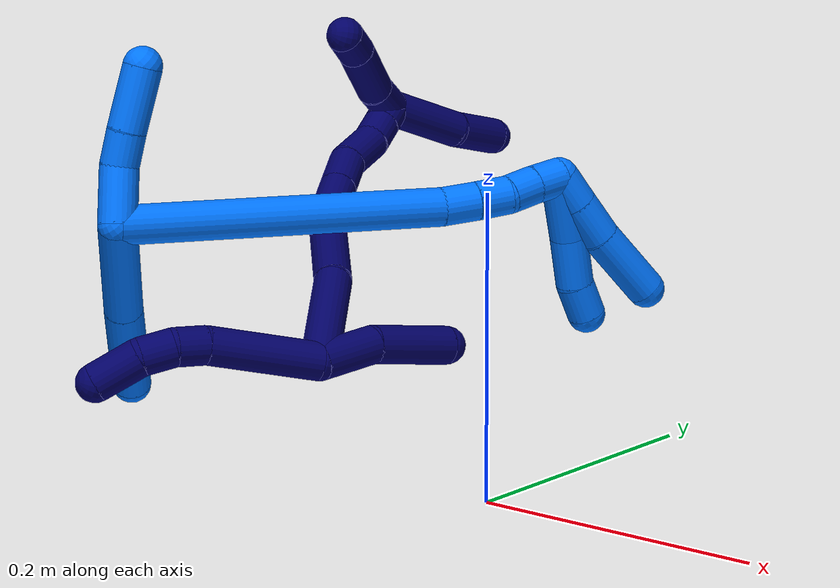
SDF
<sdf version="1.7">
 <world name="default">
  <model name="7">
   <static>0</static>
   <link name="7">
    <collision name="collision-cylinder-e_1_2_8">
     <pose>-0.004748 0.000418 0.037303 -0.011212 -0.126603 0.000711</pose>
     <geometry><cylinder><radius>0.0125</radius><length>0.075212</length></cylinder></geometry>
     <surface>
      <friction><ode><mu>1.16</mu><mu2>1.16</mu2><slip1>0</slip1><slip2>0</slip2></ode></friction>
      <contact><ode><kp>1e+06</kp><kd>1</kd><max_vel>0</max_vel><min_depth>0.001</min_depth></ode></contact>
     </surface>
    </collision>
    <visual name="visual-cylinder-e_1_2_8">
     <pose>-0.004748 0.000418 0.037303 -0.011212 -0.126603 0.000711</pose>
     <geometry><cylinder><radius>0.0125</radius><length>0.075212</length></cylinder></geometry>
     <material><ambient>0.003922 0 0.403922 1</ambient></material>
    </visual>
    <collision name="collision-cylinder-e_2_8_9">
     <pose>-0.010835 -0.001078 0.084646 0.188374 -0.130188 -0.012316</pose>
     <geometry><cylinder><radius>0.0125</radius><length>0.020618</length></cylinder></geometry>
     <surface>
      <friction><ode><mu>1.16</mu><mu2>1.16</mu2><slip1>0</slip1><slip2>0</slip2></ode></friction>
      <contact><ode><kp>1e+06</kp><kd>1</kd><max_vel>0</max_vel><min_depth>0.001</min_depth></ode></contact>
     </surface>
    </collision>
    <visual name="visual-cylinder-e_2_8_9">
     <pose>-0.010835 -0.001078 0.084646 0.188374 -0.130188 -0.012316</pose>
     <geometry><cylinder><radius>0.0125</radius><length>0.020618</length></cylinder></geometry>
     <material><ambient>0.003922 0 0.403922 1</ambient></material>
    </visual>
    <collision name="collision-cylinder-e_3_9_10">
     <pose>-0.015517 -0.007151 0.104372 0.405655 -0.307194 -0.063656</pose>
     <geometry><cylinder><radius>0.0125</radius><length>0.022115</length></cylinder></geometry>
     <surface>
      <friction><ode><mu>1.16</mu><mu2>1.16</mu2><slip1>0</slip1><slip2>0</slip2></ode></friction>
      <contact><ode><kp>1e+06</kp><kd>1</kd><max_vel>0</max_vel><min_depth>0.001</min_depth></ode></contact>
     </surface>
    </collision>
    <visual name="visual-cylinder-e_3_9_10">
     <pose>-0.015517 -0.007151 0.104372 0.405655 -0.307194 -0.063656</pose>
     <geometry><cylinder><radius>0.0125</radius><length>0.022115</length></cylinder></geometry>
     <material><ambient>0.003922 0 0.403922 1</ambient></material>
    </visual>
    <collision name="collision-cylinder-e_4_10_6">
     <pose>-0.0262 -0.020476 0.124966 0.698737 -0.47563 -0.176163</pose>
     <geometry><cylinder><radius>0.0125</radius><length>0.032054</length></cylinder></geometry>
     <surface>
      <friction><ode><mu>1.16</mu><mu2>1.16</mu2><slip1>0</slip1><slip2>0</slip2></ode></friction>
      <contact><ode><kp>1e+06</kp><kd>1</kd><max_vel>0</max_vel><min_depth>0.001</min_depth></ode></contact>
     </surface>
    </collision>
    <visual name="visual-cylinder-e_4_10_6">
     <pose>-0.0262 -0.020476 0.124966 0.698737 -0.47563 -0.176163</pose>
     <geometry><cylinder><radius>0.0125</radius><length>0.032054</length></cylinder></geometry>
     <material><ambient>0.003922 0 0.403922 1</ambient></material>
    </visual>
    <collision name="collision-cylinder-e_1_2_11">
     <pose>-0.002309 0.008056 -0.01939 -2.74784 -0.109514 0.536361</pose>
     <geometry><cylinder><radius>0.0125</radius><length>0.042247</length></cylinder></geometry>
     <surface>
      <friction><ode><mu>1.16</mu><mu2>1.16</mu2><slip1>0</slip1><slip2>0</slip2></ode></friction>
      <contact><ode><kp>1e+06</kp><kd>1</kd><max_vel>0</max_vel><min_depth>0.001</min_depth></ode></contact>
     </surface>
    </collision>
    <visual name="visual-cylinder-e_1_2_11">
     <pose>-0.002309 0.008056 -0.01939 -2.74784 -0.109514 0.536361</pose>
     <geometry><cylinder><radius>0.0125</radius><length>0.042247</length></cylinder></geometry>
     <material><ambient>0.003922 0 0.403922 1</ambient></material>
    </visual>
    <collision name="collision-cylinder-e_2_11_5">
     <pose>-0.008066 0.01981 -0.067211 -3.0122 -0.119719 1.49299</pose>
     <geometry><cylinder><radius>0.0125</radius><length>0.057753</length></cylinder></geometry>
     <surface>
      <friction><ode><mu>1.16</mu><mu2>1.16</mu2><slip1>0</slip1><slip2>0</slip2></ode></friction>
      <contact><ode><kp>1e+06</kp><kd>1</kd><max_vel>0</max_vel><min_depth>0.001</min_depth></ode></contact>
     </surface>
    </collision>
    <visual name="visual-cylinder-e_2_11_5">
     <pose>-0.008066 0.01981 -0.067211 -3.0122 -0.119719 1.49299</pose>
     <geometry><cylinder><radius>0.0125</radius><length>0.057753</length></cylinder></geometry>
     <material><ambient>0.003922 0 0.403922 1</ambient></material>
    </visual>
    <collision name="collision-cylinder-e_1_2_12">
     <pose>-0.023625 0.028926 -0.01395 -2.02016 -0.634266 0.963239</pose>
     <geometry><cylinder><radius>0.0125</radius><length>0.079737</length></cylinder></geometry>
     <surface>
      <friction><ode><mu>1.16</mu><mu2>1.16</mu2><slip1>0</slip1><slip2>0</slip2></ode></friction>
      <contact><ode><kp>1e+06</kp><kd>1</kd><max_vel>0</max_vel><min_depth>0.001</min_depth></ode></contact>
     </surface>
    </collision>
    <visual name="visual-cylinder-e_1_2_12">
     <pose>-0.023625 0.028926 -0.01395 -2.02016 -0.634266 0.963239</pose>
     <geometry><cylinder><radius>0.0125</radius><length>0.079737</length></cylinder></geometry>
     <material><ambient>0.003922 0 0.403922 1</ambient></material>
    </visual>
    <collision name="collision-cylinder-e_2_12_13">
     <pose>-0.078221 0.082747 -0.039034 -1.99133 -0.848825 1.21754</pose>
     <geometry><cylinder><radius>0.0125</radius><length>0.082532</length></cylinder></geometry>
     <surface>
      <friction><ode><mu>1.16</mu><mu2>1.16</mu2><slip1>0</slip1><slip2>0</slip2></ode></friction>
      <contact><ode><kp>1e+06</kp><kd>1</kd><max_vel>0</max_vel><min_depth>0.001</min_depth></ode></contact>
     </surface>
    </collision>
    <visual name="visual-cylinder-e_2_12_13">
     <pose>-0.078221 0.082747 -0.039034 -1.99133 -0.848825 1.21754</pose>
     <geometry><cylinder><radius>0.0125</radius><length>0.082532</length></cylinder></geometry>
     <material><ambient>0.003922 0 0.403922 1</ambient></material>
    </visual>
    <collision name="collision-cylinder-e_3_13_14">
     <pose>-0.118533 0.11976 -0.057834 -2.13492 -0.577392 0.989275</pose>
     <geometry><cylinder><radius>0.0125</radius><length>0.034227</length></cylinder></geometry>
     <surface>
      <friction><ode><mu>1.16</mu><mu2>1.16</mu2><slip1>0</slip1><slip2>0</slip2></ode></friction>
      <contact><ode><kp>1e+06</kp><kd>1</kd><max_vel>0</max_vel><min_depth>0.001</min_depth></ode></contact>
     </surface>
    </collision>
    <visual name="visual-cylinder-e_3_13_14">
     <pose>-0.118533 0.11976 -0.057834 -2.13492 -0.577392 0.989275</pose>
     <geometry><cylinder><radius>0.0125</radius><length>0.034227</length></cylinder></geometry>
     <material><ambient>0.003922 0 0.403922 1</ambient></material>
    </visual>
    <collision name="collision-cylinder-e_4_14_15">
     <pose>-0.135792 0.14246 -0.072151 -2.13182 -0.564674 0.966713</pose>
     <geometry><cylinder><radius>0.0125</radius><length>0.029592</length></cylinder></geometry>
     <surface>
      <friction><ode><mu>1.16</mu><mu2>1.16</mu2><slip1>0</slip1><slip2>0</slip2></ode></friction>
      <contact><ode><kp>1e+06</kp><kd>1</kd><max_vel>0</max_vel><min_depth>0.001</min_depth></ode></contact>
     </surface>
    </collision>
    <visual name="visual-cylinder-e_4_14_15">
     <pose>-0.135792 0.14246 -0.072151 -2.13182 -0.564674 0.966713</pose>
     <geometry><cylinder><radius>0.0125</radius><length>0.029592</length></cylinder></geometry>
     <material><ambient>0.003922 0 0.403922 1</ambient></material>
    </visual>
    <collision name="collision-cylinder-e_5_15_16">
     <pose>-0.150516 0.16264 -0.090403 -2.45051 -0.424557 1.07894</pose>
     <geometry><cylinder><radius>0.0125</radius><length>0.033046</length></cylinder></geometry>
     <surface>
      <friction><ode><mu>1.16</mu><mu2>1.16</mu2><slip1>0</slip1><slip2>0</slip2></ode></friction>
      <contact><ode><kp>1e+06</kp><kd>1</kd><max_vel>0</max_vel><min_depth>0.001</min_depth></ode></contact>
     </surface>
    </collision>
    <visual name="visual-cylinder-e_5_15_16">
     <pose>-0.150516 0.16264 -0.090403 -2.45051 -0.424557 1.07894</pose>
     <geometry><cylinder><radius>0.0125</radius><length>0.033046</length></cylinder></geometry>
     <material><ambient>0.003922 0 0.403922 1</ambient></material>
    </visual>
    <collision name="collision-cylinder-e_6_16_17">
     <pose>-0.161747 0.179537 -0.107602 -2.22488 -0.448281 0.865636</pose>
     <geometry><cylinder><radius>0.0125</radius><length>0.020416</length></cylinder></geometry>
     <surface>
      <friction><ode><mu>1.16</mu><mu2>1.16</mu2><slip1>0</slip1><slip2>0</slip2></ode></friction>
      <contact><ode><kp>1e+06</kp><kd>1</kd><max_vel>0</max_vel><min_depth>0.001</min_depth></ode></contact>
     </surface>
    </collision>
    <visual name="visual-cylinder-e_6_16_17">
     <pose>-0.161747 0.179537 -0.107602 -2.22488 -0.448281 0.865636</pose>
     <geometry><cylinder><radius>0.0125</radius><length>0.020416</length></cylinder></geometry>
     <material><ambient>0.003922 0 0.403922 1</ambient></material>
    </visual>
    <collision name="collision-cylinder-e_7_17_1">
     <pose>-0.170651 0.194133 -0.11879 -2.22469 -0.453572 0.874739</pose>
     <geometry><cylinder><radius>0.0125</radius><length>0.02045</length></cylinder></geometry>
     <surface>
      <friction><ode><mu>1.16</mu><mu2>1.16</mu2><slip1>0</slip1><slip2>0</slip2></ode></friction>
      <contact><ode><kp>1e+06</kp><kd>1</kd><max_vel>0</max_vel><min_depth>0.001</min_depth></ode></contact>
     </surface>
    </collision>
    <visual name="visual-cylinder-e_7_17_1">
     <pose>-0.170651 0.194133 -0.11879 -2.22469 -0.453572 0.874739</pose>
     <geometry><cylinder><radius>0.0125</radius><length>0.02045</length></cylinder></geometry>
     <material><ambient>0.003922 0 0.403922 1</ambient></material>
    </visual>
    <collision name="collision-cylinder-e_1_1_18">
     <pose>-0.165629 0.205052 -0.112446 -0.29481 0.65106 -0.100153</pose>
     <geometry><cylinder><radius>0.0125</radius><length>0.031361</length></cylinder></geometry>
     <surface>
      <friction><ode><mu>1.16</mu><mu2>1.16</mu2><slip1>0</slip1><slip2>0</slip2></ode></friction>
      <contact><ode><kp>1e+06</kp><kd>1</kd><max_vel>0</max_vel><min_depth>0.001</min_depth></ode></contact>
     </surface>
    </collision>
    <visual name="visual-cylinder-e_1_1_18">
     <pose>-0.165629 0.205052 -0.112446 -0.29481 0.65106 -0.100153</pose>
     <geometry><cylinder><radius>0.0125</radius><length>0.031361</length></cylinder></geometry>
     <material><ambient>0.003922 0 0.403922 1</ambient></material>
    </visual>
    <collision name="collision-cylinder-e_2_18_19">
     <pose>-0.140951 0.217104 -0.084366 -0.481096 0.69467 -0.177136</pose>
     <geometry><cylinder><radius>0.0125</radius><length>0.047413</length></cylinder></geometry>
     <surface>
      <friction><ode><mu>1.16</mu><mu2>1.16</mu2><slip1>0</slip1><slip2>0</slip2></ode></friction>
      <contact><ode><kp>1e+06</kp><kd>1</kd><max_vel>0</max_vel><min_depth>0.001</min_depth></ode></contact>
     </surface>
    </collision>
    <visual name="visual-cylinder-e_2_18_19">
     <pose>-0.140951 0.217104 -0.084366 -0.481096 0.69467 -0.177136</pose>
     <geometry><cylinder><radius>0.0125</radius><length>0.047413</length></cylinder></geometry>
     <material><ambient>0.003922 0 0.403922 1</ambient></material>
    </visual>
    <collision name="collision-cylinder-e_3_19_4">
     <pose>-0.119492 0.228804 -0.060317 -0.392472 0.633533 -0.130147</pose>
     <geometry><cylinder><radius>0.0125</radius><length>0.021226</length></cylinder></geometry>
     <surface>
      <friction><ode><mu>1.16</mu><mu2>1.16</mu2><slip1>0</slip1><slip2>0</slip2></ode></friction>
      <contact><ode><kp>1e+06</kp><kd>1</kd><max_vel>0</max_vel><min_depth>0.001</min_depth></ode></contact>
     </surface>
    </collision>
    <visual name="visual-cylinder-e_3_19_4">
     <pose>-0.119492 0.228804 -0.060317 -0.392472 0.633533 -0.130147</pose>
     <geometry><cylinder><radius>0.0125</radius><length>0.021226</length></cylinder></geometry>
     <material><ambient>0.003922 0 0.403922 1</ambient></material>
    </visual>
    <collision name="collision-cylinder-e_1_1_20">
     <pose>-0.180466 0.199066 -0.153456 3.06052 -0.180861 -2.3004</pose>
     <geometry><cylinder><radius>0.0125</radius><length>0.05931</length></cylinder></geometry>
     <surface>
      <friction><ode><mu>1.16</mu><mu2>1.16</mu2><slip1>0</slip1><slip2>0</slip2></ode></friction>
      <contact><ode><kp>1e+06</kp><kd>1</kd><max_vel>0</max_vel><min_depth>0.001</min_depth></ode></contact>
     </surface>
    </collision>
    <visual name="visual-cylinder-e_1_1_20">
     <pose>-0.180466 0.199066 -0.153456 3.06052 -0.180861 -2.3004</pose>
     <geometry><cylinder><radius>0.0125</radius><length>0.05931</length></cylinder></geometry>
     <material><ambient>0.003922 0 0.403922 1</ambient></material>
    </visual>
    <collision name="collision-cylinder-e_2_20_3">
     <pose>-0.192574 0.198147 -0.201661 -3.06629 -0.339426 2.70882</pose>
     <geometry><cylinder><radius>0.0125</radius><length>0.04069</length></cylinder></geometry>
     <surface>
      <friction><ode><mu>1.16</mu><mu2>1.16</mu2><slip1>0</slip1><slip2>0</slip2></ode></friction>
      <contact><ode><kp>1e+06</kp><kd>1</kd><max_vel>0</max_vel><min_depth>0.001</min_depth></ode></contact>
     </surface>
    </collision>
    <visual name="visual-cylinder-e_2_20_3">
     <pose>-0.192574 0.198147 -0.201661 -3.06629 -0.339426 2.70882</pose>
     <geometry><cylinder><radius>0.0125</radius><length>0.04069</length></cylinder></geometry>
     <material><ambient>0.003922 0 0.403922 1</ambient></material>
    </visual>
    <collision name="collision-sphere-3">
     <pose>-0.199348 0.19959 -0.220791 0 -0 0</pose>
     <geometry><sphere><radius>0.0125</radius></sphere></geometry>
     <surface>
      <friction><ode><mu>1.16</mu><mu2>1.16</mu2><slip1>0</slip1><slip2>0</slip2></ode></friction>
      <contact><ode><kp>1e+06</kp><kd>1</kd><max_vel>0</max_vel><min_depth>0.001</min_depth></ode></contact>
     </surface>
    </collision>
    <visual name="visual-sphere-3">
     <pose>-0.199348 0.19959 -0.220791 0 -0 0</pose>
     <geometry><sphere><radius>0.0125</radius></sphere></geometry>
     <material><ambient>0.003922 0 0.403922 1</ambient></material>
    </visual>
    <collision name="collision-sphere-20">
     <pose>-0.1858 0.196703 -0.182531 0 -0 0</pose>
     <geometry><sphere><radius>0.0125</radius></sphere></geometry>
     <surface>
      <friction><ode><mu>1.16</mu><mu2>1.16</mu2><slip1>0</slip1><slip2>0</slip2></ode></friction>
      <contact><ode><kp>1e+06</kp><kd>1</kd><max_vel>0</max_vel><min_depth>0.001</min_depth></ode></contact>
     </surface>
    </collision>
    <visual name="visual-sphere-20">
     <pose>-0.1858 0.196703 -0.182531 0 -0 0</pose>
     <geometry><sphere><radius>0.0125</radius></sphere></geometry>
     <material><ambient>0.003922 0 0.403922 1</ambient></material>
    </visual>
    <collision name="collision-sphere-4">
     <pose>-0.11321 0.232075 -0.052414 0 -0 0</pose>
     <geometry><sphere><radius>0.0125</radius></sphere></geometry>
     <surface>
      <friction><ode><mu>1.16</mu><mu2>1.16</mu2><slip1>0</slip1><slip2>0</slip2></ode></friction>
      <contact><ode><kp>1e+06</kp><kd>1</kd><max_vel>0</max_vel><min_depth>0.001</min_depth></ode></contact>
     </surface>
    </collision>
    <visual name="visual-sphere-4">
     <pose>-0.11321 0.232075 -0.052414 0 -0 0</pose>
     <geometry><sphere><radius>0.0125</radius></sphere></geometry>
     <material><ambient>0.003922 0 0.403922 1</ambient></material>
    </visual>
    <collision name="collision-sphere-11">
     <pose>-0.004617 0.016111 -0.03878 0 -0 0</pose>
     <geometry><sphere><radius>0.0125</radius></sphere></geometry>
     <surface>
      <friction><ode><mu>1.16</mu><mu2>1.16</mu2><slip1>0</slip1><slip2>0</slip2></ode></friction>
      <contact><ode><kp>1e+06</kp><kd>1</kd><max_vel>0</max_vel><min_depth>0.001</min_depth></ode></contact>
     </surface>
    </collision>
    <visual name="visual-sphere-11">
     <pose>-0.004617 0.016111 -0.03878 0 -0 0</pose>
     <geometry><sphere><radius>0.0125</radius></sphere></geometry>
     <material><ambient>0.003922 0 0.403922 1</ambient></material>
    </visual>
    <collision name="collision-sphere-6">
     <pose>-0.033538 -0.029641 0.135875 0 -0 0</pose>
     <geometry><sphere><radius>0.0125</radius></sphere></geometry>
     <surface>
      <friction><ode><mu>1.16</mu><mu2>1.16</mu2><slip1>0</slip1><slip2>0</slip2></ode></friction>
      <contact><ode><kp>1e+06</kp><kd>1</kd><max_vel>0</max_vel><min_depth>0.001</min_depth></ode></contact>
     </surface>
    </collision>
    <visual name="visual-sphere-6">
     <pose>-0.033538 -0.029641 0.135875 0 -0 0</pose>
     <geometry><sphere><radius>0.0125</radius></sphere></geometry>
     <material><ambient>0.003922 0 0.403922 1</ambient></material>
    </visual>
    <collision name="collision-sphere-10">
     <pose>-0.018861 -0.01131 0.114057 0 -0 0</pose>
     <geometry><sphere><radius>0.0125</radius></sphere></geometry>
     <surface>
      <friction><ode><mu>1.16</mu><mu2>1.16</mu2><slip1>0</slip1><slip2>0</slip2></ode></friction>
      <contact><ode><kp>1e+06</kp><kd>1</kd><max_vel>0</max_vel><min_depth>0.001</min_depth></ode></contact>
     </surface>
    </collision>
    <visual name="visual-sphere-10">
     <pose>-0.018861 -0.01131 0.114057 0 -0 0</pose>
     <geometry><sphere><radius>0.0125</radius></sphere></geometry>
     <material><ambient>0.003922 0 0.403922 1</ambient></material>
    </visual>
    <collision name="collision-sphere-9">
     <pose>-0.012173 -0.002992 0.094687 0 -0 0</pose>
     <geometry><sphere><radius>0.0125</radius></sphere></geometry>
     <surface>
      <friction><ode><mu>1.16</mu><mu2>1.16</mu2><slip1>0</slip1><slip2>0</slip2></ode></friction>
      <contact><ode><kp>1e+06</kp><kd>1</kd><max_vel>0</max_vel><min_depth>0.001</min_depth></ode></contact>
     </surface>
    </collision>
    <visual name="visual-sphere-9">
     <pose>-0.012173 -0.002992 0.094687 0 -0 0</pose>
     <geometry><sphere><radius>0.0125</radius></sphere></geometry>
     <material><ambient>0.003922 0 0.403922 1</ambient></material>
    </visual>
    <collision name="collision-sphere-2">
     <geometry><sphere><radius>0.0125</radius></sphere></geometry>
     <surface>
      <friction><ode><mu>1.16</mu><mu2>1.16</mu2><slip1>0</slip1><slip2>0</slip2></ode></friction>
      <contact><ode><kp>1e+06</kp><kd>1</kd><max_vel>0</max_vel><min_depth>0.001</min_depth></ode></contact>
     </surface>
    </collision>
    <visual name="visual-sphere-2">
     <geometry><sphere><radius>0.0125</radius></sphere></geometry>
     <material><ambient>0.003922 0 0.403922 1</ambient></material>
    </visual>
    <collision name="collision-sphere-19">
     <pose>-0.125775 0.225532 -0.06822 0 -0 0</pose>
     <geometry><sphere><radius>0.0125</radius></sphere></geometry>
     <surface>
      <friction><ode><mu>1.16</mu><mu2>1.16</mu2><slip1>0</slip1><slip2>0</slip2></ode></friction>
      <contact><ode><kp>1e+06</kp><kd>1</kd><max_vel>0</max_vel><min_depth>0.001</min_depth></ode></contact>
     </surface>
    </collision>
    <visual name="visual-sphere-19">
     <pose>-0.125775 0.225532 -0.06822 0 -0 0</pose>
     <geometry><sphere><radius>0.0125</radius></sphere></geometry>
     <material><ambient>0.003922 0 0.403922 1</ambient></material>
    </visual>
    <collision name="collision-sphere-8">
     <pose>-0.009497 0.000836 0.074605 0 -0 0</pose>
     <geometry><sphere><radius>0.0125</radius></sphere></geometry>
     <surface>
      <friction><ode><mu>1.16</mu><mu2>1.16</mu2><slip1>0</slip1><slip2>0</slip2></ode></friction>
      <contact><ode><kp>1e+06</kp><kd>1</kd><max_vel>0</max_vel><min_depth>0.001</min_depth></ode></contact>
     </surface>
    </collision>
    <visual name="visual-sphere-8">
     <pose>-0.009497 0.000836 0.074605 0 -0 0</pose>
     <geometry><sphere><radius>0.0125</radius></sphere></geometry>
     <material><ambient>0.003922 0 0.403922 1</ambient></material>
    </visual>
    <collision name="collision-sphere-5">
     <pose>-0.011515 0.02351 -0.095641 0 -0 0</pose>
     <geometry><sphere><radius>0.0125</radius></sphere></geometry>
     <surface>
      <friction><ode><mu>1.16</mu><mu2>1.16</mu2><slip1>0</slip1><slip2>0</slip2></ode></friction>
      <contact><ode><kp>1e+06</kp><kd>1</kd><max_vel>0</max_vel><min_depth>0.001</min_depth></ode></contact>
     </surface>
    </collision>
    <visual name="visual-sphere-5">
     <pose>-0.011515 0.02351 -0.095641 0 -0 0</pose>
     <geometry><sphere><radius>0.0125</radius></sphere></geometry>
     <material><ambient>0.003922 0 0.403922 1</ambient></material>
    </visual>
    <collision name="collision-sphere-12">
     <pose>-0.047251 0.057852 -0.0279 0 -0 0</pose>
     <geometry><sphere><radius>0.0125</radius></sphere></geometry>
     <surface>
      <friction><ode><mu>1.16</mu><mu2>1.16</mu2><slip1>0</slip1><slip2>0</slip2></ode></friction>
      <contact><ode><kp>1e+06</kp><kd>1</kd><max_vel>0</max_vel><min_depth>0.001</min_depth></ode></contact>
     </surface>
    </collision>
    <visual name="visual-sphere-12">
     <pose>-0.047251 0.057852 -0.0279 0 -0 0</pose>
     <geometry><sphere><radius>0.0125</radius></sphere></geometry>
     <material><ambient>0.003922 0 0.403922 1</ambient></material>
    </visual>
    <collision name="collision-sphere-13">
     <pose>-0.109192 0.107642 -0.050167 0 -0 0</pose>
     <geometry><sphere><radius>0.0125</radius></sphere></geometry>
     <surface>
      <friction><ode><mu>1.16</mu><mu2>1.16</mu2><slip1>0</slip1><slip2>0</slip2></ode></friction>
      <contact><ode><kp>1e+06</kp><kd>1</kd><max_vel>0</max_vel><min_depth>0.001</min_depth></ode></contact>
     </surface>
    </collision>
    <visual name="visual-sphere-13">
     <pose>-0.109192 0.107642 -0.050167 0 -0 0</pose>
     <geometry><sphere><radius>0.0125</radius></sphere></geometry>
     <material><ambient>0.003922 0 0.403922 1</ambient></material>
    </visual>
    <collision name="collision-sphere-14">
     <pose>-0.127874 0.131877 -0.065501 0 -0 0</pose>
     <geometry><sphere><radius>0.0125</radius></sphere></geometry>
     <surface>
      <friction><ode><mu>1.16</mu><mu2>1.16</mu2><slip1>0</slip1><slip2>0</slip2></ode></friction>
      <contact><ode><kp>1e+06</kp><kd>1</kd><max_vel>0</max_vel><min_depth>0.001</min_depth></ode></contact>
     </surface>
    </collision>
    <visual name="visual-sphere-14">
     <pose>-0.127874 0.131877 -0.065501 0 -0 0</pose>
     <geometry><sphere><radius>0.0125</radius></sphere></geometry>
     <material><ambient>0.003922 0 0.403922 1</ambient></material>
    </visual>
    <collision name="collision-sphere-15">
     <pose>-0.14371 0.153044 -0.078801 0 -0 0</pose>
     <geometry><sphere><radius>0.0125</radius></sphere></geometry>
     <surface>
      <friction><ode><mu>1.16</mu><mu2>1.16</mu2><slip1>0</slip1><slip2>0</slip2></ode></friction>
      <contact><ode><kp>1e+06</kp><kd>1</kd><max_vel>0</max_vel><min_depth>0.001</min_depth></ode></contact>
     </surface>
    </collision>
    <visual name="visual-sphere-15">
     <pose>-0.14371 0.153044 -0.078801 0 -0 0</pose>
     <geometry><sphere><radius>0.0125</radius></sphere></geometry>
     <material><ambient>0.003922 0 0.403922 1</ambient></material>
    </visual>
    <collision name="collision-sphere-16">
     <pose>-0.157322 0.172237 -0.102005 0 -0 0</pose>
     <geometry><sphere><radius>0.0125</radius></sphere></geometry>
     <surface>
      <friction><ode><mu>1.16</mu><mu2>1.16</mu2><slip1>0</slip1><slip2>0</slip2></ode></friction>
      <contact><ode><kp>1e+06</kp><kd>1</kd><max_vel>0</max_vel><min_depth>0.001</min_depth></ode></contact>
     </surface>
    </collision>
    <visual name="visual-sphere-16">
     <pose>-0.157322 0.172237 -0.102005 0 -0 0</pose>
     <geometry><sphere><radius>0.0125</radius></sphere></geometry>
     <material><ambient>0.003922 0 0.403922 1</ambient></material>
    </visual>
    <collision name="collision-sphere-17">
     <pose>-0.166171 0.186838 -0.113199 0 -0 0</pose>
     <geometry><sphere><radius>0.0125</radius></sphere></geometry>
     <surface>
      <friction><ode><mu>1.16</mu><mu2>1.16</mu2><slip1>0</slip1><slip2>0</slip2></ode></friction>
      <contact><ode><kp>1e+06</kp><kd>1</kd><max_vel>0</max_vel><min_depth>0.001</min_depth></ode></contact>
     </surface>
    </collision>
    <visual name="visual-sphere-17">
     <pose>-0.166171 0.186838 -0.113199 0 -0 0</pose>
     <geometry><sphere><radius>0.0125</radius></sphere></geometry>
     <material><ambient>0.003922 0 0.403922 1</ambient></material>
    </visual>
    <collision name="collision-sphere-1">
     <pose>-0.175132 0.201428 -0.124381 0 -0 0</pose>
     <geometry><sphere><radius>0.0125</radius></sphere></geometry>
     <surface>
      <friction><ode><mu>1.16</mu><mu2>1.16</mu2><slip1>0</slip1><slip2>0</slip2></ode></friction>
      <contact><ode><kp>1e+06</kp><kd>1</kd><max_vel>0</max_vel><min_depth>0.001</min_depth></ode></contact>
     </surface>
    </collision>
    <visual name="visual-sphere-1">
     <pose>-0.175132 0.201428 -0.124381 0 -0 0</pose>
     <geometry><sphere><radius>0.0125</radius></sphere></geometry>
     <material><ambient>0.003922 0 0.403922 1</ambient></material>
    </visual>
    <collision name="collision-sphere-18">
     <pose>-0.156126 0.208676 -0.100511 0 -0 0</pose>
     <geometry><sphere><radius>0.0125</radius></sphere></geometry>
     <surface>
      <friction><ode><mu>1.16</mu><mu2>1.16</mu2><slip1>0</slip1><slip2>0</slip2></ode></friction>
      <contact><ode><kp>1e+06</kp><kd>1</kd><max_vel>0</max_vel><min_depth>0.001</min_depth></ode></contact>
     </surface>
    </collision>
    <visual name="visual-sphere-18">
     <pose>-0.156126 0.208676 -0.100511 0 -0 0</pose>
     <geometry><sphere><radius>0.0125</radius></sphere></geometry>
     <material><ambient>0.003922 0 0.403922 1</ambient></material>
    </visual>
    <inertial>
     <pose>-0.084614 0.096786 -0.048016 0 -0 0</pose>
     <mass>0.75</mass>
     <inertia><ixx>0.000152</ixx><ixy>0</ixy><ixz>0</ixz><iyy>0.000204</iyy><iyz>0</iyz><izz>-1e-05</izz></inertia>
    </inertial>
   </link>
   <pose>-0.079362 -0.069422 0.09306 1.31484 -0.265273 -0.363925</pose>
  </model>
  <model name="14">
   <static>0</static>
   <link name="14">
    <collision name="collision-cylinder-e_1_2_8">
     <pose>-0.02261 -0.0087 -0.029665 2.85632 -0.63148 -2.31321</pose>
     <geometry><cylinder><radius>0.0125</radius><length>0.0766</length></cylinder></geometry>
     <surface>
      <friction><ode><mu>1.16</mu><mu2>1.16</mu2><slip1>0</slip1><slip2>0</slip2></ode></friction>
      <contact><ode><kp>1e+06</kp><kd>1</kd><max_vel>0</max_vel><min_depth>0.001</min_depth></ode></contact>
     </surface>
    </collision>
    <visual name="visual-cylinder-e_1_2_8">
     <pose>-0.02261 -0.0087 -0.029665 2.85632 -0.63148 -2.31321</pose>
     <geometry><cylinder><radius>0.0125</radius><length>0.0766</length></cylinder></geometry>
     <material><ambient>0 0.462745 1 1</ambient></material>
    </visual>
    <collision name="collision-cylinder-e_2_8_6">
     <pose>-0.0668 -0.024699 -0.088103 2.89313 -0.628594 -2.40808</pose>
     <geometry><cylinder><radius>0.0125</radius><length>0.0734</length></cylinder></geometry>
     <surface>
      <friction><ode><mu>1.16</mu><mu2>1.16</mu2><slip1>0</slip1><slip2>0</slip2></ode></friction>
      <contact><ode><kp>1e+06</kp><kd>1</kd><max_vel>0</max_vel><min_depth>0.001</min_depth></ode></contact>
     </surface>
    </collision>
    <visual name="visual-cylinder-e_2_8_6">
     <pose>-0.0668 -0.024699 -0.088103 2.89313 -0.628594 -2.40808</pose>
     <geometry><cylinder><radius>0.0125</radius><length>0.0734</length></cylinder></geometry>
     <material><ambient>0 0.462745 1 1</ambient></material>
    </visual>
    <collision name="collision-cylinder-e_1_2_9">
     <pose>-0.001994 0.013843 0.011748 -0.867066 -0.109369 0.050667</pose>
     <geometry><cylinder><radius>0.0125</radius><length>0.036531</length></cylinder></geometry>
     <surface>
      <friction><ode><mu>1.16</mu><mu2>1.16</mu2><slip1>0</slip1><slip2>0</slip2></ode></friction>
      <contact><ode><kp>1e+06</kp><kd>1</kd><max_vel>0</max_vel><min_depth>0.001</min_depth></ode></contact>
     </surface>
    </collision>
    <visual name="visual-cylinder-e_1_2_9">
     <pose>-0.001994 0.013843 0.011748 -0.867066 -0.109369 0.050667</pose>
     <geometry><cylinder><radius>0.0125</radius><length>0.036531</length></cylinder></geometry>
     <material><ambient>0 0.462745 1 1</ambient></material>
    </visual>
    <collision name="collision-cylinder-e_2_9_10">
     <pose>-0.001501 0.036172 0.030443 -0.884824 0.222955 -0.105961</pose>
     <geometry><cylinder><radius>0.0125</radius><length>0.02249</length></cylinder></geometry>
     <surface>
      <friction><ode><mu>1.16</mu><mu2>1.16</mu2><slip1>0</slip1><slip2>0</slip2></ode></friction>
      <contact><ode><kp>1e+06</kp><kd>1</kd><max_vel>0</max_vel><min_depth>0.001</min_depth></ode></contact>
     </surface>
    </collision>
    <visual name="visual-cylinder-e_2_9_10">
     <pose>-0.001501 0.036172 0.030443 -0.884824 0.222955 -0.105961</pose>
     <geometry><cylinder><radius>0.0125</radius><length>0.02249</length></cylinder></geometry>
     <material><ambient>0 0.462745 1 1</ambient></material>
    </visual>
    <collision name="collision-cylinder-e_3_10_5">
     <pose>0.004885 0.060961 0.049172 -0.945014 0.19151 -0.098107</pose>
     <geometry><cylinder><radius>0.0125</radius><length>0.040979</length></cylinder></geometry>
     <surface>
      <friction><ode><mu>1.16</mu><mu2>1.16</mu2><slip1>0</slip1><slip2>0</slip2></ode></friction>
      <contact><ode><kp>1e+06</kp><kd>1</kd><max_vel>0</max_vel><min_depth>0.001</min_depth></ode></contact>
     </surface>
    </collision>
    <visual name="visual-cylinder-e_3_10_5">
     <pose>0.004885 0.060961 0.049172 -0.945014 0.19151 -0.098107</pose>
     <geometry><cylinder><radius>0.0125</radius><length>0.040979</length></cylinder></geometry>
     <material><ambient>0 0.462745 1 1</ambient></material>
    </visual>
    <collision name="collision-cylinder-e_1_2_11">
     <pose>0.023036 0.077856 -0.069228 -2.2976 0.217612 -0.477339</pose>
     <geometry><cylinder><radius>0.0125</radius><length>0.213398</length></cylinder></geometry>
     <surface>
      <friction><ode><mu>1.16</mu><mu2>1.16</mu2><slip1>0</slip1><slip2>0</slip2></ode></friction>
      <contact><ode><kp>1e+06</kp><kd>1</kd><max_vel>0</max_vel><min_depth>0.001</min_depth></ode></contact>
     </surface>
    </collision>
    <visual name="visual-cylinder-e_1_2_11">
     <pose>0.023036 0.077856 -0.069228 -2.2976 0.217612 -0.477339</pose>
     <geometry><cylinder><radius>0.0125</radius><length>0.213398</length></cylinder></geometry>
     <material><ambient>0 0.462745 1 1</ambient></material>
    </visual>
    <collision name="collision-cylinder-e_2_11_12">
     <pose>0.049486 0.164968 -0.144973 -2.18425 0.292867 -0.553838</pose>
     <geometry><cylinder><radius>0.0125</radius><length>0.023649</length></cylinder></geometry>
     <surface>
      <friction><ode><mu>1.16</mu><mu2>1.16</mu2><slip1>0</slip1><slip2>0</slip2></ode></friction>
      <contact><ode><kp>1e+06</kp><kd>1</kd><max_vel>0</max_vel><min_depth>0.001</min_depth></ode></contact>
     </surface>
    </collision>
    <visual name="visual-cylinder-e_2_11_12">
     <pose>0.049486 0.164968 -0.144973 -2.18425 0.292867 -0.553838</pose>
     <geometry><cylinder><radius>0.0125</radius><length>0.023649</length></cylinder></geometry>
     <material><ambient>0 0.462745 1 1</ambient></material>
    </visual>
    <collision name="collision-cylinder-e_3_12_13">
     <pose>0.055601 0.182989 -0.157379 -2.16243 0.250509 -0.464089</pose>
     <geometry><cylinder><radius>0.0125</radius><length>0.021797</length></cylinder></geometry>
     <surface>
      <friction><ode><mu>1.16</mu><mu2>1.16</mu2><slip1>0</slip1><slip2>0</slip2></ode></friction>
      <contact><ode><kp>1e+06</kp><kd>1</kd><max_vel>0</max_vel><min_depth>0.001</min_depth></ode></contact>
     </surface>
    </collision>
    <visual name="visual-cylinder-e_3_12_13">
     <pose>0.055601 0.182989 -0.157379 -2.16243 0.250509 -0.464089</pose>
     <geometry><cylinder><radius>0.0125</radius><length>0.021797</length></cylinder></geometry>
     <material><ambient>0 0.462745 1 1</ambient></material>
    </visual>
    <collision name="collision-cylinder-e_4_13_14">
     <pose>0.05839 0.200817 -0.167881 -2.04154 0.008557 -0.013956</pose>
     <geometry><cylinder><radius>0.0125</radius><length>0.020343</length></cylinder></geometry>
     <surface>
      <friction><ode><mu>1.16</mu><mu2>1.16</mu2><slip1>0</slip1><slip2>0</slip2></ode></friction>
      <contact><ode><kp>1e+06</kp><kd>1</kd><max_vel>0</max_vel><min_depth>0.001</min_depth></ode></contact>
     </surface>
    </collision>
    <visual name="visual-cylinder-e_4_13_14">
     <pose>0.05839 0.200817 -0.167881 -2.04154 0.008557 -0.013956</pose>
     <geometry><cylinder><radius>0.0125</radius><length>0.020343</length></cylinder></geometry>
     <material><ambient>0 0.462745 1 1</ambient></material>
    </visual>
    <collision name="collision-cylinder-e_5_14_1">
     <pose>0.058922 0.218902 -0.177664 -2.09132 0.042782 -0.073816</pose>
     <geometry><cylinder><radius>0.0125</radius><length>0.020813</length></cylinder></geometry>
     <surface>
      <friction><ode><mu>1.16</mu><mu2>1.16</mu2><slip1>0</slip1><slip2>0</slip2></ode></friction>
      <contact><ode><kp>1e+06</kp><kd>1</kd><max_vel>0</max_vel><min_depth>0.001</min_depth></ode></contact>
     </surface>
    </collision>
    <visual name="visual-cylinder-e_5_14_1">
     <pose>0.058922 0.218902 -0.177664 -2.09132 0.042782 -0.073816</pose>
     <geometry><cylinder><radius>0.0125</radius><length>0.020813</length></cylinder></geometry>
     <material><ambient>0 0.462745 1 1</ambient></material>
    </visual>
    <collision name="collision-cylinder-e_1_1_15">
     <pose>0.059861 0.226821 -0.193927 3.04262 0.044291 0.84105</pose>
     <geometry><cylinder><radius>0.0125</radius><length>0.022314</length></cylinder></geometry>
     <surface>
      <friction><ode><mu>1.16</mu><mu2>1.16</mu2><slip1>0</slip1><slip2>0</slip2></ode></friction>
      <contact><ode><kp>1e+06</kp><kd>1</kd><max_vel>0</max_vel><min_depth>0.001</min_depth></ode></contact>
     </surface>
    </collision>
    <visual name="visual-cylinder-e_1_1_15">
     <pose>0.059861 0.226821 -0.193927 3.04262 0.044291 0.84105</pose>
     <geometry><cylinder><radius>0.0125</radius><length>0.022314</length></cylinder></geometry>
     <material><ambient>0 0.462745 1 1</ambient></material>
    </visual>
    <collision name="collision-cylinder-e_2_15_16">
     <pose>0.060885 0.224548 -0.218964 3.05781 0.03782 0.847656</pose>
     <geometry><cylinder><radius>0.0125</radius><length>0.028011</length></cylinder></geometry>
     <surface>
      <friction><ode><mu>1.16</mu><mu2>1.16</mu2><slip1>0</slip1><slip2>0</slip2></ode></friction>
      <contact><ode><kp>1e+06</kp><kd>1</kd><max_vel>0</max_vel><min_depth>0.001</min_depth></ode></contact>
     </surface>
    </collision>
    <visual name="visual-cylinder-e_2_15_16">
     <pose>0.060885 0.224548 -0.218964 3.05781 0.03782 0.847656</pose>
     <geometry><cylinder><radius>0.0125</radius><length>0.028011</length></cylinder></geometry>
     <material><ambient>0 0.462745 1 1</ambient></material>
    </visual>
    <collision name="collision-cylinder-e_3_16_4">
     <pose>0.062424 0.223912 -0.257722 -3.12003 0.040663 -2.16632</pose>
     <geometry><cylinder><radius>0.0125</radius><length>0.049676</length></cylinder></geometry>
     <surface>
      <friction><ode><mu>1.16</mu><mu2>1.16</mu2><slip1>0</slip1><slip2>0</slip2></ode></friction>
      <contact><ode><kp>1e+06</kp><kd>1</kd><max_vel>0</max_vel><min_depth>0.001</min_depth></ode></contact>
     </surface>
    </collision>
    <visual name="visual-cylinder-e_3_16_4">
     <pose>0.062424 0.223912 -0.257722 -3.12003 0.040663 -2.16632</pose>
     <geometry><cylinder><radius>0.0125</radius><length>0.049676</length></cylinder></geometry>
     <material><ambient>0 0.462745 1 1</ambient></material>
    </visual>
    <collision name="collision-cylinder-e_1_1_17">
     <pose>0.054318 0.219716 -0.201904 2.7352 -0.238579 -1.05375</pose>
     <geometry><cylinder><radius>0.0125</radius><length>0.04273</length></cylinder></geometry>
     <surface>
      <friction><ode><mu>1.16</mu><mu2>1.16</mu2><slip1>0</slip1><slip2>0</slip2></ode></friction>
      <contact><ode><kp>1e+06</kp><kd>1</kd><max_vel>0</max_vel><min_depth>0.001</min_depth></ode></contact>
     </surface>
    </collision>
    <visual name="visual-cylinder-e_1_1_17">
     <pose>0.054318 0.219716 -0.201904 2.7352 -0.238579 -1.05375</pose>
     <geometry><cylinder><radius>0.0125</radius><length>0.04273</length></cylinder></geometry>
     <material><ambient>0 0.462745 1 1</ambient></material>
    </visual>
    <collision name="collision-cylinder-e_2_17_18">
     <pose>0.046048 0.204119 -0.235642 2.67486 -0.193678 -0.775943</pose>
     <geometry><cylinder><radius>0.0125</radius><length>0.033477</length></cylinder></geometry>
     <surface>
      <friction><ode><mu>1.16</mu><mu2>1.16</mu2><slip1>0</slip1><slip2>0</slip2></ode></friction>
      <contact><ode><kp>1e+06</kp><kd>1</kd><max_vel>0</max_vel><min_depth>0.001</min_depth></ode></contact>
     </surface>
    </collision>
    <visual name="visual-cylinder-e_2_17_18">
     <pose>0.046048 0.204119 -0.235642 2.67486 -0.193678 -0.775943</pose>
     <geometry><cylinder><radius>0.0125</radius><length>0.033477</length></cylinder></geometry>
     <material><ambient>0 0.462745 1 1</ambient></material>
    </visual>
    <collision name="collision-cylinder-e_3_18_3">
     <pose>0.041331 0.193746 -0.26173 2.88617 -0.125954 -0.912995</pose>
     <geometry><cylinder><radius>0.0125</radius><length>0.023793</length></cylinder></geometry>
     <surface>
      <friction><ode><mu>1.16</mu><mu2>1.16</mu2><slip1>0</slip1><slip2>0</slip2></ode></friction>
      <contact><ode><kp>1e+06</kp><kd>1</kd><max_vel>0</max_vel><min_depth>0.001</min_depth></ode></contact>
     </surface>
    </collision>
    <visual name="visual-cylinder-e_3_18_3">
     <pose>0.041331 0.193746 -0.26173 2.88617 -0.125954 -0.912995</pose>
     <geometry><cylinder><radius>0.0125</radius><length>0.023793</length></cylinder></geometry>
     <material><ambient>0 0.462745 1 1</ambient></material>
    </visual>
    <collision name="collision-sphere-3">
     <pose>0.039837 0.190764 -0.273149 0 -0 0</pose>
     <geometry><sphere><radius>0.0125</radius></sphere></geometry>
     <surface>
      <friction><ode><mu>1.16</mu><mu2>1.16</mu2><slip1>0</slip1><slip2>0</slip2></ode></friction>
      <contact><ode><kp>1e+06</kp><kd>1</kd><max_vel>0</max_vel><min_depth>0.001</min_depth></ode></contact>
     </surface>
    </collision>
    <visual name="visual-sphere-3">
     <pose>0.039837 0.190764 -0.273149 0 -0 0</pose>
     <geometry><sphere><radius>0.0125</radius></sphere></geometry>
     <material><ambient>0 0.462745 1 1</ambient></material>
    </visual>
    <collision name="collision-sphere-5">
     <pose>0.008785 0.077265 0.060954 0 -0 0</pose>
     <geometry><sphere><radius>0.0125</radius></sphere></geometry>
     <surface>
      <friction><ode><mu>1.16</mu><mu2>1.16</mu2><slip1>0</slip1><slip2>0</slip2></ode></friction>
      <contact><ode><kp>1e+06</kp><kd>1</kd><max_vel>0</max_vel><min_depth>0.001</min_depth></ode></contact>
     </surface>
    </collision>
    <visual name="visual-sphere-5">
     <pose>0.008785 0.077265 0.060954 0 -0 0</pose>
     <geometry><sphere><radius>0.0125</radius></sphere></geometry>
     <material><ambient>0 0.462745 1 1</ambient></material>
    </visual>
    <collision name="collision-sphere-10">
     <pose>0.000985 0.044658 0.03739 0 -0 0</pose>
     <geometry><sphere><radius>0.0125</radius></sphere></geometry>
     <surface>
      <friction><ode><mu>1.16</mu><mu2>1.16</mu2><slip1>0</slip1><slip2>0</slip2></ode></friction>
      <contact><ode><kp>1e+06</kp><kd>1</kd><max_vel>0</max_vel><min_depth>0.001</min_depth></ode></contact>
     </surface>
    </collision>
    <visual name="visual-sphere-10">
     <pose>0.000985 0.044658 0.03739 0 -0 0</pose>
     <geometry><sphere><radius>0.0125</radius></sphere></geometry>
     <material><ambient>0 0.462745 1 1</ambient></material>
    </visual>
    <collision name="collision-sphere-6">
     <pose>-0.08838 -0.031999 -0.116876 0 -0 0</pose>
     <geometry><sphere><radius>0.0125</radius></sphere></geometry>
     <surface>
      <friction><ode><mu>1.16</mu><mu2>1.16</mu2><slip1>0</slip1><slip2>0</slip2></ode></friction>
      <contact><ode><kp>1e+06</kp><kd>1</kd><max_vel>0</max_vel><min_depth>0.001</min_depth></ode></contact>
     </surface>
    </collision>
    <visual name="visual-sphere-6">
     <pose>-0.08838 -0.031999 -0.116876 0 -0 0</pose>
     <geometry><sphere><radius>0.0125</radius></sphere></geometry>
     <material><ambient>0 0.462745 1 1</ambient></material>
    </visual>
    <collision name="collision-sphere-9">
     <pose>-0.003987 0.027686 0.023497 0 -0 0</pose>
     <geometry><sphere><radius>0.0125</radius></sphere></geometry>
     <surface>
      <friction><ode><mu>1.16</mu><mu2>1.16</mu2><slip1>0</slip1><slip2>0</slip2></ode></friction>
      <contact><ode><kp>1e+06</kp><kd>1</kd><max_vel>0</max_vel><min_depth>0.001</min_depth></ode></contact>
     </surface>
    </collision>
    <visual name="visual-sphere-9">
     <pose>-0.003987 0.027686 0.023497 0 -0 0</pose>
     <geometry><sphere><radius>0.0125</radius></sphere></geometry>
     <material><ambient>0 0.462745 1 1</ambient></material>
    </visual>
    <collision name="collision-sphere-2">
     <geometry><sphere><radius>0.0125</radius></sphere></geometry>
     <surface>
      <friction><ode><mu>1.16</mu><mu2>1.16</mu2><slip1>0</slip1><slip2>0</slip2></ode></friction>
      <contact><ode><kp>1e+06</kp><kd>1</kd><max_vel>0</max_vel><min_depth>0.001</min_depth></ode></contact>
     </surface>
    </collision>
    <visual name="visual-sphere-2">
     <geometry><sphere><radius>0.0125</radius></sphere></geometry>
     <material><ambient>0 0.462745 1 1</ambient></material>
    </visual>
    <collision name="collision-sphere-8">
     <pose>-0.04522 -0.0174 -0.05933 0 -0 0</pose>
     <geometry><sphere><radius>0.0125</radius></sphere></geometry>
     <surface>
      <friction><ode><mu>1.16</mu><mu2>1.16</mu2><slip1>0</slip1><slip2>0</slip2></ode></friction>
      <contact><ode><kp>1e+06</kp><kd>1</kd><max_vel>0</max_vel><min_depth>0.001</min_depth></ode></contact>
     </surface>
    </collision>
    <visual name="visual-sphere-8">
     <pose>-0.04522 -0.0174 -0.05933 0 -0 0</pose>
     <geometry><sphere><radius>0.0125</radius></sphere></geometry>
     <material><ambient>0 0.462745 1 1</ambient></material>
    </visual>
    <collision name="collision-sphere-11">
     <pose>0.046072 0.155711 -0.138455 0 -0 0</pose>
     <geometry><sphere><radius>0.0125</radius></sphere></geometry>
     <surface>
      <friction><ode><mu>1.16</mu><mu2>1.16</mu2><slip1>0</slip1><slip2>0</slip2></ode></friction>
      <contact><ode><kp>1e+06</kp><kd>1</kd><max_vel>0</max_vel><min_depth>0.001</min_depth></ode></contact>
     </surface>
    </collision>
    <visual name="visual-sphere-11">
     <pose>0.046072 0.155711 -0.138455 0 -0 0</pose>
     <geometry><sphere><radius>0.0125</radius></sphere></geometry>
     <material><ambient>0 0.462745 1 1</ambient></material>
    </visual>
    <collision name="collision-sphere-12">
     <pose>0.0529 0.174225 -0.15149 0 -0 0</pose>
     <geometry><sphere><radius>0.0125</radius></sphere></geometry>
     <surface>
      <friction><ode><mu>1.16</mu><mu2>1.16</mu2><slip1>0</slip1><slip2>0</slip2></ode></friction>
      <contact><ode><kp>1e+06</kp><kd>1</kd><max_vel>0</max_vel><min_depth>0.001</min_depth></ode></contact>
     </surface>
    </collision>
    <visual name="visual-sphere-12">
     <pose>0.0529 0.174225 -0.15149 0 -0 0</pose>
     <geometry><sphere><radius>0.0125</radius></sphere></geometry>
     <material><ambient>0 0.462745 1 1</ambient></material>
    </visual>
    <collision name="collision-sphere-13">
     <pose>0.058303 0.191753 -0.163267 0 -0 0</pose>
     <geometry><sphere><radius>0.0125</radius></sphere></geometry>
     <surface>
      <friction><ode><mu>1.16</mu><mu2>1.16</mu2><slip1>0</slip1><slip2>0</slip2></ode></friction>
      <contact><ode><kp>1e+06</kp><kd>1</kd><max_vel>0</max_vel><min_depth>0.001</min_depth></ode></contact>
     </surface>
    </collision>
    <visual name="visual-sphere-13">
     <pose>0.058303 0.191753 -0.163267 0 -0 0</pose>
     <geometry><sphere><radius>0.0125</radius></sphere></geometry>
     <material><ambient>0 0.462745 1 1</ambient></material>
    </visual>
    <collision name="collision-sphere-14">
     <pose>0.058477 0.209882 -0.172494 0 -0 0</pose>
     <geometry><sphere><radius>0.0125</radius></sphere></geometry>
     <surface>
      <friction><ode><mu>1.16</mu><mu2>1.16</mu2><slip1>0</slip1><slip2>0</slip2></ode></friction>
      <contact><ode><kp>1e+06</kp><kd>1</kd><max_vel>0</max_vel><min_depth>0.001</min_depth></ode></contact>
     </surface>
    </collision>
    <visual name="visual-sphere-14">
     <pose>0.058477 0.209882 -0.172494 0 -0 0</pose>
     <geometry><sphere><radius>0.0125</radius></sphere></geometry>
     <material><ambient>0 0.462745 1 1</ambient></material>
    </visual>
    <collision name="collision-sphere-1">
     <pose>0.059367 0.227922 -0.182835 0 -0 0</pose>
     <geometry><sphere><radius>0.0125</radius></sphere></geometry>
     <surface>
      <friction><ode><mu>1.16</mu><mu2>1.16</mu2><slip1>0</slip1><slip2>0</slip2></ode></friction>
      <contact><ode><kp>1e+06</kp><kd>1</kd><max_vel>0</max_vel><min_depth>0.001</min_depth></ode></contact>
     </surface>
    </collision>
    <visual name="visual-sphere-1">
     <pose>0.059367 0.227922 -0.182835 0 -0 0</pose>
     <geometry><sphere><radius>0.0125</radius></sphere></geometry>
     <material><ambient>0 0.462745 1 1</ambient></material>
    </visual>
    <collision name="collision-sphere-18">
     <pose>0.042826 0.196728 -0.250311 0 -0 0</pose>
     <geometry><sphere><radius>0.0125</radius></sphere></geometry>
     <surface>
      <friction><ode><mu>1.16</mu><mu2>1.16</mu2><slip1>0</slip1><slip2>0</slip2></ode></friction>
      <contact><ode><kp>1e+06</kp><kd>1</kd><max_vel>0</max_vel><min_depth>0.001</min_depth></ode></contact>
     </surface>
    </collision>
    <visual name="visual-sphere-18">
     <pose>0.042826 0.196728 -0.250311 0 -0 0</pose>
     <geometry><sphere><radius>0.0125</radius></sphere></geometry>
     <material><ambient>0 0.462745 1 1</ambient></material>
    </visual>
    <collision name="collision-sphere-15">
     <pose>0.060355 0.22572 -0.205018 0 -0 0</pose>
     <geometry><sphere><radius>0.0125</radius></sphere></geometry>
     <surface>
      <friction><ode><mu>1.16</mu><mu2>1.16</mu2><slip1>0</slip1><slip2>0</slip2></ode></friction>
      <contact><ode><kp>1e+06</kp><kd>1</kd><max_vel>0</max_vel><min_depth>0.001</min_depth></ode></contact>
     </surface>
    </collision>
    <visual name="visual-sphere-15">
     <pose>0.060355 0.22572 -0.205018 0 -0 0</pose>
     <geometry><sphere><radius>0.0125</radius></sphere></geometry>
     <material><ambient>0 0.462745 1 1</ambient></material>
    </visual>
    <collision name="collision-sphere-16">
     <pose>0.061414 0.223377 -0.232911 0 -0 0</pose>
     <geometry><sphere><radius>0.0125</radius></sphere></geometry>
     <surface>
      <friction><ode><mu>1.16</mu><mu2>1.16</mu2><slip1>0</slip1><slip2>0</slip2></ode></friction>
      <contact><ode><kp>1e+06</kp><kd>1</kd><max_vel>0</max_vel><min_depth>0.001</min_depth></ode></contact>
     </surface>
    </collision>
    <visual name="visual-sphere-16">
     <pose>0.061414 0.223377 -0.232911 0 -0 0</pose>
     <geometry><sphere><radius>0.0125</radius></sphere></geometry>
     <material><ambient>0 0.462745 1 1</ambient></material>
    </visual>
    <collision name="collision-sphere-4">
     <pose>0.063434 0.224448 -0.282533 0 -0 0</pose>
     <geometry><sphere><radius>0.0125</radius></sphere></geometry>
     <surface>
      <friction><ode><mu>1.16</mu><mu2>1.16</mu2><slip1>0</slip1><slip2>0</slip2></ode></friction>
      <contact><ode><kp>1e+06</kp><kd>1</kd><max_vel>0</max_vel><min_depth>0.001</min_depth></ode></contact>
     </surface>
    </collision>
    <visual name="visual-sphere-4">
     <pose>0.063434 0.224448 -0.282533 0 -0 0</pose>
     <geometry><sphere><radius>0.0125</radius></sphere></geometry>
     <material><ambient>0 0.462745 1 1</ambient></material>
    </visual>
    <collision name="collision-sphere-17">
     <pose>0.049269 0.21151 -0.220973 0 -0 0</pose>
     <geometry><sphere><radius>0.0125</radius></sphere></geometry>
     <surface>
      <friction><ode><mu>1.16</mu><mu2>1.16</mu2><slip1>0</slip1><slip2>0</slip2></ode></friction>
      <contact><ode><kp>1e+06</kp><kd>1</kd><max_vel>0</max_vel><min_depth>0.001</min_depth></ode></contact>
     </surface>
    </collision>
    <visual name="visual-sphere-17">
     <pose>0.049269 0.21151 -0.220973 0 -0 0</pose>
     <geometry><sphere><radius>0.0125</radius></sphere></geometry>
     <material><ambient>0 0.462745 1 1</ambient></material>
    </visual>
    <inertial>
     <pose>0.018879 0.103719 -0.107149 0 -0 0</pose>
     <mass>0.75</mass>
     <inertia>
      <ixx>0.000257</ixx>
      <ixy>0</ixy>
      <ixz>0</ixz>
      <iyy>-0.000771</iyy>
      <iyz>0</iyz>
      <izz>-0.000757</izz>
     </inertia>
    </inertial>
   </link>
   <pose>-0.155733 -0.169505 0.186802 0.670787 -0.144723 -0.293824</pose>
  </model>
 </world>
</sdf>
